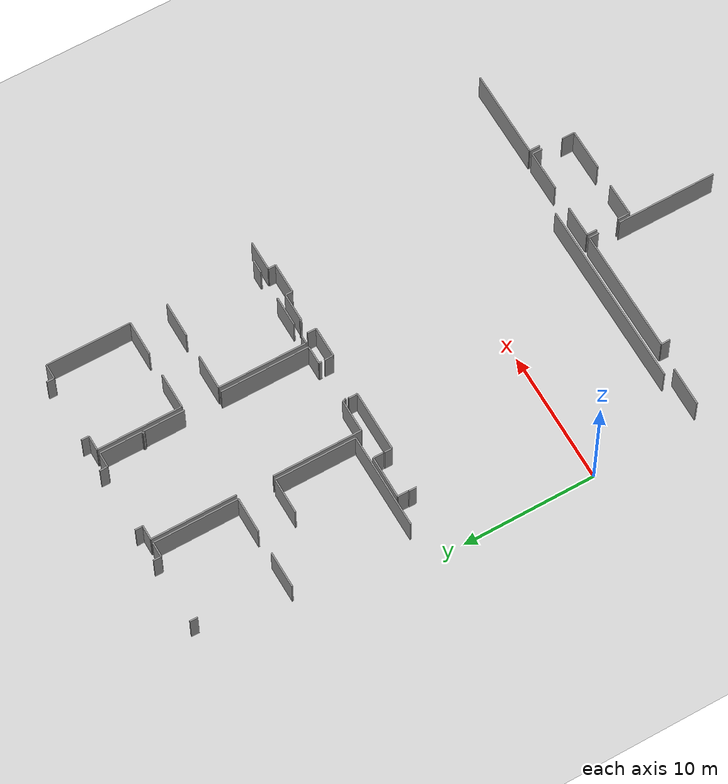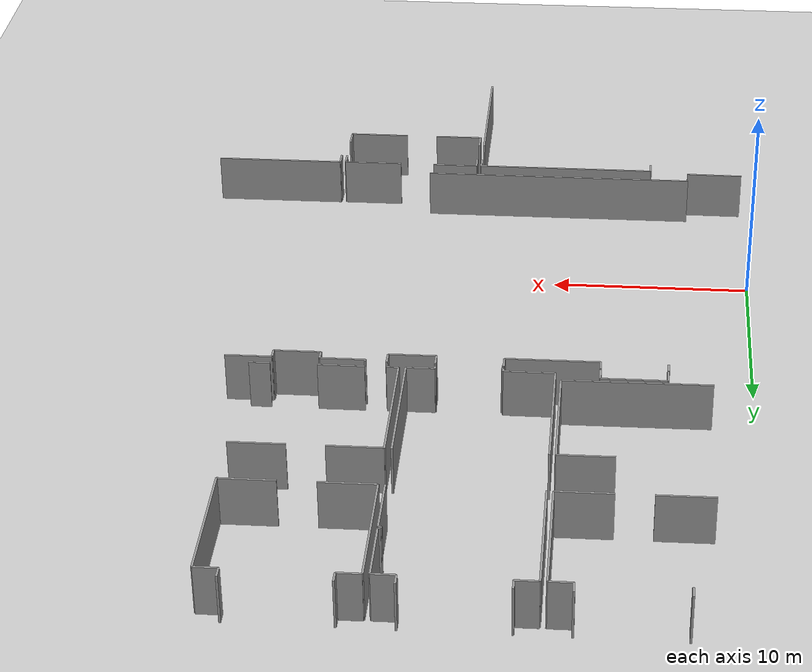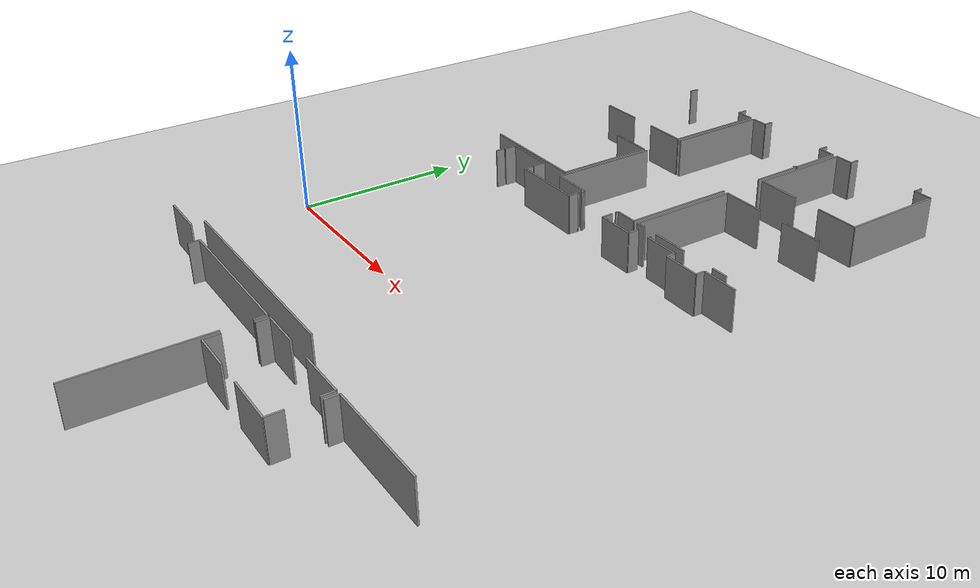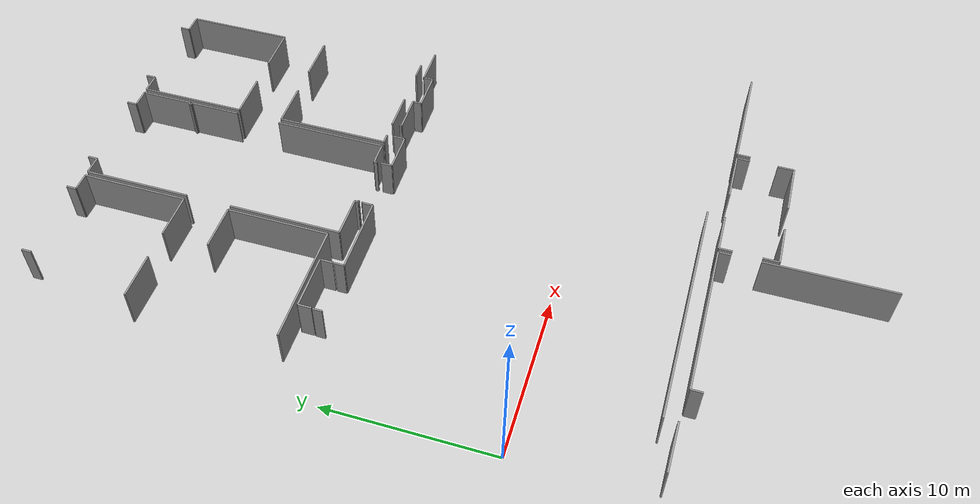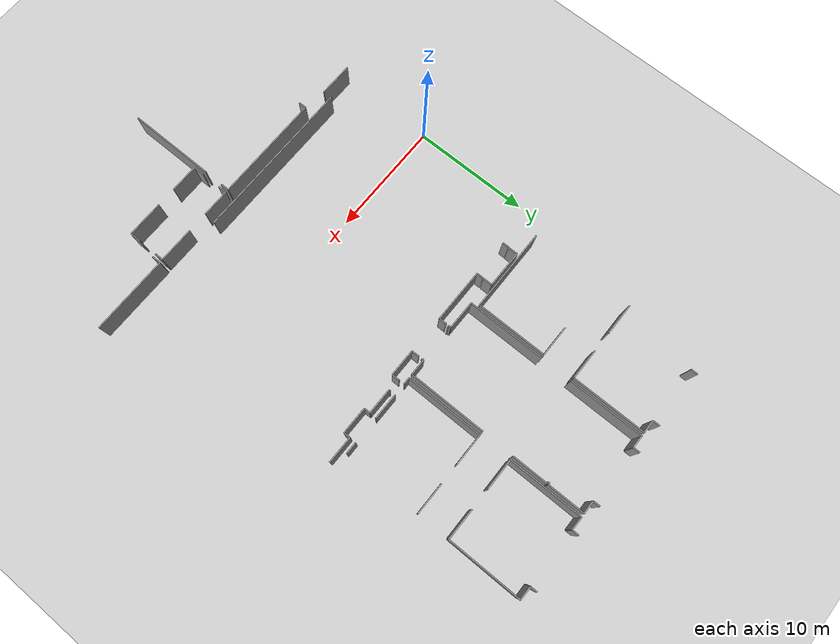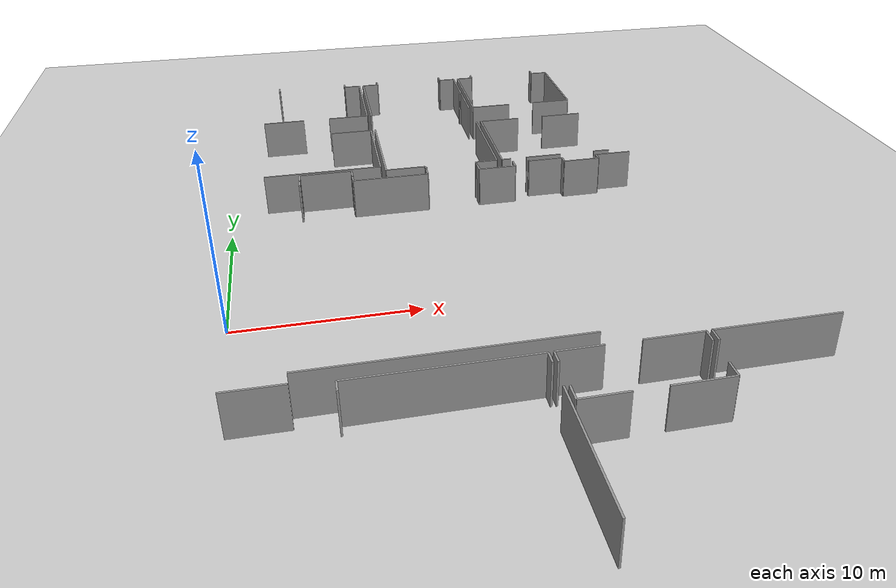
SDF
<sdf version="1.6">
 <world name="default">
  <model name="ground_plane">
   <static>1</static>
   <link name="link">
    <collision name="collision">
     <geometry><plane><normal>0 0 1</normal><size>100 100</size></plane></geometry>
     <surface><friction><ode><mu>100</mu><mu2>50</mu2></ode></friction></surface>
    </collision>
    <visual name="visual">
     <cast_shadows>0</cast_shadows>
     <geometry><plane><normal>0 0 1</normal><size>100 100</size></plane></geometry>
     <material>
      <script><uri>file://media/materials/scripts/gazebo.material</uri><name>Gazebo/Grey</name></script>
     </material>
    </visual>
   </link>
  </model>
  <model name="50045228">
   <static>1</static>
   <link name="Wall_53">
    <collision name="Wall_53_Collision">
     <geometry><box><size>0.587485331896 0.1 2.5</size></box></geometry>
     <pose>0.293742665948 0 1.25 0 0 0</pose>
    </collision>
    <visual name="Wall_53_Visual">
     <pose>0.293742665948 0 1.25 0 0 0</pose>
     <geometry><box><size>0.587485331896 0.1 2.5</size></box></geometry>
     <material>
      <script><uri>file://media/materials/scripts/gazebo.material</uri><name>Gazebo/Grey</name></script>
      <ambient>1 1 1 1</ambient>
     </material>
    </visual>
    <pose>50.1288256002 -0.587485331896 0 0 0 1.57079632679</pose>
   </link>
   <link name="Wall_54">
    <collision name="Wall_54_Collision">
     <geometry><box><size>0.590276236085 0.1 2.5</size></box></geometry>
     <pose>0.295138118043 0 1.25 0 0 0</pose>
    </collision>
    <visual name="Wall_54_Visual">
     <pose>0.295138118043 0 1.25 0 0 0</pose>
     <geometry><box><size>0.590276236085 0.1 2.5</size></box></geometry>
     <material>
      <script><uri>file://media/materials/scripts/gazebo.material</uri><name>Gazebo/Grey</name></script>
      <ambient>1 1 1 1</ambient>
     </material>
    </visual>
    <pose>55.0569281025 -0.0 0 0 0 -1.57079632679</pose>
   </link>
   <link name="Wall_55">
    <collision name="Wall_55_Collision">
     <geometry><box><size>1.11065300815 0.1 2.5</size></box></geometry>
     <pose>0.555326504075 0 1.25 0 0 0</pose>
    </collision>
    <visual name="Wall_55_Visual">
     <pose>0.555326504075 0 1.25 0 0 0</pose>
     <geometry><box><size>1.11065300815 0.1 2.5</size></box></geometry>
     <material>
      <script><uri>file://media/materials/scripts/gazebo.material</uri><name>Gazebo/Grey</name></script>
      <ambient>1 1 1 1</ambient>
     </material>
    </visual>
    <pose>55.0569281025 -0.590276236085 0 0 0 0.0</pose>
   </link>
   <link name="Wall_56">
    <collision name="Wall_56_Collision">
     <geometry><box><size>6.32545748628 0.1 2.5</size></box></geometry>
     <pose>3.16272874314 0 1.25 0 0 0</pose>
    </collision>
    <visual name="Wall_56_Visual">
     <pose>3.16272874314 0 1.25 0 0 0</pose>
     <geometry><box><size>6.32545748628 0.1 2.5</size></box></geometry>
     <material>
      <script><uri>file://media/materials/scripts/gazebo.material</uri><name>Gazebo/Grey</name></script>
      <ambient>1 1 1 1</ambient>
     </material>
    </visual>
    <pose>56.1675811107 -0.590276236085 0 0 0 -1.57079632679</pose>
   </link>
   <link name="Wall_57">
    <collision name="Wall_57_Collision">
     <geometry><box><size>2.69905806984 0.1 2.5</size></box></geometry>
     <pose>1.34952903492 0 1.25 0 0 0</pose>
    </collision>
    <visual name="Wall_57_Visual">
     <pose>1.34952903492 0 1.25 0 0 0</pose>
     <geometry><box><size>2.69905806984 0.1 2.5</size></box></geometry>
     <material>
      <script><uri>file://media/materials/scripts/gazebo.material</uri><name>Gazebo/Grey</name></script>
      <ambient>1 1 1 1</ambient>
     </material>
    </visual>
    <pose>56.1675811107 -6.91573372237 0 0 0 3.14159265359</pose>
   </link>
   <link name="Wall_58">
    <collision name="Wall_58_Collision">
     <geometry><box><size>2.72343741523 0.1 2.5</size></box></geometry>
     <pose>1.36171870762 0 1.25 0 0 0</pose>
    </collision>
    <visual name="Wall_58_Visual">
     <pose>1.36171870762 0 1.25 0 0 0</pose>
     <geometry><box><size>2.72343741523 0.1 2.5</size></box></geometry>
     <material>
      <script><uri>file://media/materials/scripts/gazebo.material</uri><name>Gazebo/Grey</name></script>
      <ambient>1 1 1 1</ambient>
     </material>
    </visual>
    <pose>51.7134248834 -6.91573372237 0 0 0 -3.13754013245</pose>
   </link>
   <link name="Wall_59">
    <collision name="Wall_59_Collision">
     <geometry><box><size>6.36935079763 0.1 2.5</size></box></geometry>
     <pose>3.18467539881 0 1.25 0 0 0</pose>
    </collision>
    <visual name="Wall_59_Visual">
     <pose>3.18467539881 0 1.25 0 0 0</pose>
     <geometry><box><size>6.36935079763 0.1 2.5</size></box></geometry>
     <material>
      <script><uri>file://media/materials/scripts/gazebo.material</uri><name>Gazebo/Grey</name></script>
      <ambient>1 1 1 1</ambient>
     </material>
    </visual>
    <pose>56.4650661254 -6.95315721036 0 0 0 1.57079632679</pose>
   </link>
   <link name="Wall_60">
    <collision name="Wall_60_Collision">
     <geometry><box><size>1.09390758301 0.1 2.5</size></box></geometry>
     <pose>0.546953791507 0 1.25 0 0 0</pose>
    </collision>
    <visual name="Wall_60_Visual">
     <pose>0.546953791507 0 1.25 0 0 0</pose>
     <geometry><box><size>1.09390758301 0.1 2.5</size></box></geometry>
     <material>
      <script><uri>file://media/materials/scripts/gazebo.material</uri><name>Gazebo/Grey</name></script>
      <ambient>1 1 1 1</ambient>
     </material>
    </visual>
    <pose>56.4650661254 -0.583806412737 0 0 0 0.0</pose>
   </link>
   <link name="Wall_61">
    <collision name="Wall_61_Collision">
     <geometry><box><size>0.575560559449 0.1 2.5</size></box></geometry>
     <pose>0.287780279725 0 1.25 0 0 0</pose>
    </collision>
    <visual name="Wall_61_Visual">
     <pose>0.287780279725 0 1.25 0 0 0</pose>
     <geometry><box><size>0.575560559449 0.1 2.5</size></box></geometry>
     <material>
      <script><uri>file://media/materials/scripts/gazebo.material</uri><name>Gazebo/Grey</name></script>
      <ambient>1 1 1 1</ambient>
     </material>
    </visual>
    <pose>57.5589737084 -0.583806412737 0 0 0 1.57079632679</pose>
   </link>
   <link name="Wall_62">
    <collision name="Wall_62_Collision">
     <geometry><box><size>0.601059274999 0.1 2.5</size></box></geometry>
     <pose>0.3005296375 0 1.25 0 0 0</pose>
    </collision>
    <visual name="Wall_62_Visual">
     <pose>0.3005296375 0 1.25 0 0 0</pose>
     <geometry><box><size>0.601059274999 0.1 2.5</size></box></geometry>
     <material>
      <script><uri>file://media/materials/scripts/gazebo.material</uri><name>Gazebo/Grey</name></script>
      <ambient>1 1 1 1</ambient>
     </material>
    </visual>
    <pose>62.4563762646 -0.00824585328724 0 0 0 -1.57079632679</pose>
   </link>
   <link name="Wall_63">
    <collision name="Wall_63_Collision">
     <geometry><box><size>1.11141416384 0.1 2.5</size></box></geometry>
     <pose>0.555707081919 0 1.25 0 0 0</pose>
    </collision>
    <visual name="Wall_63_Visual">
     <pose>0.555707081919 0 1.25 0 0 0</pose>
     <geometry><box><size>1.11141416384 0.1 2.5</size></box></geometry>
     <material>
      <script><uri>file://media/materials/scripts/gazebo.material</uri><name>Gazebo/Grey</name></script>
      <ambient>1 1 1 1</ambient>
     </material>
    </visual>
    <pose>62.4563762646 -0.609305128286 0 0 0 0.0</pose>
   </link>
   <link name="Wall_64">
    <collision name="Wall_64_Collision">
     <geometry><box><size>3.15258000063 0.1 2.5</size></box></geometry>
     <pose>1.57629000032 0 1.25 0 0 0</pose>
    </collision>
    <visual name="Wall_64_Visual">
     <pose>1.57629000032 0 1.25 0 0 0</pose>
     <geometry><box><size>3.15258000063 0.1 2.5</size></box></geometry>
     <material>
      <script><uri>file://media/materials/scripts/gazebo.material</uri><name>Gazebo/Grey</name></script>
      <ambient>1 1 1 1</ambient>
     </material>
    </visual>
    <pose>63.5677904285 -0.609305128286 0 0 0 -1.57079632679</pose>
   </link>
   <link name="Wall_65">
    <collision name="Wall_65_Collision">
     <geometry><box><size>0.135612571755 0.1 2.5</size></box></geometry>
     <pose>0.0678062858774 0 1.25 0 0 0</pose>
    </collision>
    <visual name="Wall_65_Visual">
     <pose>0.0678062858774 0 1.25 0 0 0</pose>
     <geometry><box><size>0.135612571755 0.1 2.5</size></box></geometry>
     <material>
      <script><uri>file://media/materials/scripts/gazebo.material</uri><name>Gazebo/Grey</name></script>
      <ambient>1 1 1 1</ambient>
     </material>
    </visual>
    <pose>63.5677904285 -3.76188512892 0 0 0 3.14159265359</pose>
   </link>
   <link name="Wall_66">
    <collision name="Wall_66_Collision">
     <geometry><box><size>0.119755161587 0.1 2.5</size></box></geometry>
     <pose>0.0598775807935 0 1.25 0 0 0</pose>
    </collision>
    <visual name="Wall_66_Visual">
     <pose>0.0598775807935 0 1.25 0 0 0</pose>
     <geometry><box><size>0.119755161587 0.1 2.5</size></box></geometry>
     <material>
      <script><uri>file://media/materials/scripts/gazebo.material</uri><name>Gazebo/Grey</name></script>
      <ambient>1 1 1 1</ambient>
     </material>
    </visual>
    <pose>63.4321778567 -3.76188512892 0 0 0 -1.57079632679</pose>
   </link>
   <link name="Wall_67">
    <collision name="Wall_67_Collision">
     <geometry><box><size>0.132441089721 0.1 2.5</size></box></geometry>
     <pose>0.0662205448606 0 1.25 0 0 0</pose>
    </collision>
    <visual name="Wall_67_Visual">
     <pose>0.0662205448606 0 1.25 0 0 0</pose>
     <geometry><box><size>0.132441089721 0.1 2.5</size></box></geometry>
     <material>
      <script><uri>file://media/materials/scripts/gazebo.material</uri><name>Gazebo/Grey</name></script>
      <ambient>1 1 1 1</ambient>
     </material>
    </visual>
    <pose>63.4321778567 -3.88164029051 0 0 0 0.0</pose>
   </link>
   <link name="Wall_68">
    <collision name="Wall_68_Collision">
     <geometry><box><size>3.05883099172 0.1 2.5</size></box></geometry>
     <pose>1.52941549586 0 1.25 0 0 0</pose>
    </collision>
    <visual name="Wall_68_Visual">
     <pose>1.52941549586 0 1.25 0 0 0</pose>
     <geometry><box><size>3.05883099172 0.1 2.5</size></box></geometry>
     <material>
      <script><uri>file://media/materials/scripts/gazebo.material</uri><name>Gazebo/Grey</name></script>
      <ambient>1 1 1 1</ambient>
     </material>
    </visual>
    <pose>63.5646189464 -3.88164029051 0 0 0 -1.57079632679</pose>
   </link>
   <link name="Wall_69">
    <collision name="Wall_69_Collision">
     <geometry><box><size>6.33433763598 0.1 2.5</size></box></geometry>
     <pose>3.16716881799 0 1.25 0 0 0</pose>
    </collision>
    <visual name="Wall_69_Visual">
     <pose>3.16716881799 0 1.25 0 0 0</pose>
     <geometry><box><size>6.33433763598 0.1 2.5</size></box></geometry>
     <material>
      <script><uri>file://media/materials/scripts/gazebo.material</uri><name>Gazebo/Grey</name></script>
      <ambient>1 1 1 1</ambient>
     </material>
    </visual>
    <pose>63.8765659193 -6.92182296787 0 0 0 1.57079632679</pose>
   </link>
   <link name="Wall_70">
    <collision name="Wall_70_Collision">
     <geometry><box><size>1.14312898417 0.1 2.5</size></box></geometry>
     <pose>0.571564492087 0 1.25 0 0 0</pose>
    </collision>
    <visual name="Wall_70_Visual">
     <pose>0.571564492087 0 1.25 0 0 0</pose>
     <geometry><box><size>1.14312898417 0.1 2.5</size></box></geometry>
     <material>
      <script><uri>file://media/materials/scripts/gazebo.material</uri><name>Gazebo/Grey</name></script>
      <ambient>1 1 1 1</ambient>
     </material>
    </visual>
    <pose>63.8765659193 -0.587485331896 0 0 0 0.0</pose>
   </link>
   <link name="Wall_71">
    <collision name="Wall_71_Collision">
     <geometry><box><size>0.573023373823 0.1 2.5</size></box></geometry>
     <pose>0.286511686911 0 1.25 0 0 0</pose>
    </collision>
    <visual name="Wall_71_Visual">
     <pose>0.286511686911 0 1.25 0 0 0</pose>
     <geometry><box><size>0.573023373823 0.1 2.5</size></box></geometry>
     <material>
      <script><uri>file://media/materials/scripts/gazebo.material</uri><name>Gazebo/Grey</name></script>
      <ambient>1 1 1 1</ambient>
     </material>
    </visual>
    <pose>65.0196949034 -0.587485331896 0 0 0 1.57079632679</pose>
   </link>
   <link name="Wall_72">
    <collision name="Wall_72_Collision">
     <geometry><box><size>0.573023373823 0.1 2.5</size></box></geometry>
     <pose>0.286511686911 0 1.25 0 0 0</pose>
    </collision>
    <visual name="Wall_72_Visual">
     <pose>0.286511686911 0 1.25 0 0 0</pose>
     <geometry><box><size>0.573023373823 0.1 2.5</size></box></geometry>
     <material>
      <script><uri>file://media/materials/scripts/gazebo.material</uri><name>Gazebo/Grey</name></script>
      <ambient>1 1 1 1</ambient>
     </material>
    </visual>
    <pose>69.9155751483 -0.014461958073 0 0 0 -1.57079632679</pose>
   </link>
   <link name="Wall_73">
    <collision name="Wall_73_Collision">
     <geometry><box><size>1.13145793029 0.1 2.5</size></box></geometry>
     <pose>0.565728965145 0 1.25 0 0 0</pose>
    </collision>
    <visual name="Wall_73_Visual">
     <pose>0.565728965145 0 1.25 0 0 0</pose>
     <geometry><box><size>1.13145793029 0.1 2.5</size></box></geometry>
     <material>
      <script><uri>file://media/materials/scripts/gazebo.material</uri><name>Gazebo/Grey</name></script>
      <ambient>1 1 1 1</ambient>
     </material>
    </visual>
    <pose>69.9155751483 -0.587485331896 0 0 0 0.0</pose>
   </link>
   <link name="Wall_74">
    <collision name="Wall_74_Collision">
     <geometry><box><size>6.3273603755 0.1 2.5</size></box></geometry>
     <pose>3.16368018775 0 1.25 0 0 0</pose>
    </collision>
    <visual name="Wall_74_Visual">
     <pose>3.16368018775 0 1.25 0 0 0</pose>
     <geometry><box><size>6.3273603755 0.1 2.5</size></box></geometry>
     <material>
      <script><uri>file://media/materials/scripts/gazebo.material</uri><name>Gazebo/Grey</name></script>
      <ambient>1 1 1 1</ambient>
     </material>
    </visual>
    <pose>71.0470330786 -0.587485331896 0 0 0 -1.57079632679</pose>
   </link>
   <link name="Wall_75">
    <collision name="Wall_75_Collision">
     <geometry><box><size>2.66911927944 0.1 2.5</size></box></geometry>
     <pose>1.33455963972 0 1.25 0 0 0</pose>
    </collision>
    <visual name="Wall_75_Visual">
     <pose>1.33455963972 0 1.25 0 0 0</pose>
     <geometry><box><size>2.66911927944 0.1 2.5</size></box></geometry>
     <material>
      <script><uri>file://media/materials/scripts/gazebo.material</uri><name>Gazebo/Grey</name></script>
      <ambient>1 1 1 1</ambient>
     </material>
    </visual>
    <pose>71.0470330786 -6.9148457074 0 0 0 3.14159265359</pose>
   </link>
   <link name="Wall_76">
    <collision name="Wall_76_Collision">
     <geometry><box><size>2.70756663172 0.1 2.5</size></box></geometry>
     <pose>1.35378331586 0 1.25 0 0 0</pose>
    </collision>
    <visual name="Wall_76_Visual">
     <pose>1.35378331586 0 1.25 0 0 0</pose>
     <geometry><box><size>2.70756663172 0.1 2.5</size></box></geometry>
     <material>
      <script><uri>file://media/materials/scripts/gazebo.material</uri><name>Gazebo/Grey</name></script>
      <ambient>1 1 1 1</ambient>
     </material>
    </visual>
    <pose>66.5841235609 -6.9148457074 0 0 0 -3.13901570198</pose>
   </link>
   <link name="Wall_108">
    <collision name="Wall_108_Collision">
     <geometry><box><size>6.65224699502 0.1 2.5</size></box></geometry>
     <pose>3.32612349751 0 1.25 0 0 0</pose>
    </collision>
    <visual name="Wall_108_Visual">
     <pose>3.32612349751 0 1.25 0 0 0</pose>
     <geometry><box><size>6.65224699502 0.1 2.5</size></box></geometry>
     <material>
      <script><uri>file://media/materials/scripts/gazebo.material</uri><name>Gazebo/Grey</name></script>
      <ambient>1 1 1 1</ambient>
     </material>
    </visual>
    <pose>63.8900130031 -16.3569820177 0 0 0 1.57079632679</pose>
   </link>
   <link name="Wall_109">
    <collision name="Wall_109_Collision">
     <geometry><box><size>2.67457422854 0.1 2.5</size></box></geometry>
     <pose>1.33728711427 0 1.25 0 0 0</pose>
    </collision>
    <visual name="Wall_109_Visual">
     <pose>1.33728711427 0 1.25 0 0 0</pose>
     <geometry><box><size>2.67457422854 0.1 2.5</size></box></geometry>
     <material>
      <script><uri>file://media/materials/scripts/gazebo.material</uri><name>Gazebo/Grey</name></script>
      <ambient>1 1 1 1</ambient>
     </material>
    </visual>
    <pose>63.8900130031 -9.70473502268 0 0 0 0.0</pose>
   </link>
   <link name="Wall_110">
    <collision name="Wall_110_Collision">
     <geometry><box><size>2.69943864768 0.1 2.5</size></box></geometry>
     <pose>1.34971932384 0 1.25 0 0 0</pose>
    </collision>
    <visual name="Wall_110_Visual">
     <pose>1.34971932384 0 1.25 0 0 0</pose>
     <geometry><box><size>2.69943864768 0.1 2.5</size></box></geometry>
     <material>
      <script><uri>file://media/materials/scripts/gazebo.material</uri><name>Gazebo/Grey</name></script>
      <ambient>1 1 1 1</ambient>
     </material>
    </visual>
    <pose>68.3517807872 -9.70473502268 0 0 0 0.0</pose>
   </link>
   <link name="Wall_112">
    <collision name="Wall_112_Collision">
     <geometry><box><size>1.02210522977 0.1 2.5</size></box></geometry>
     <pose>0.511052614887 0 1.25 0 0 0</pose>
    </collision>
    <visual name="Wall_112_Visual">
     <pose>0.511052614887 0 1.25 0 0 0</pose>
     <geometry><box><size>1.02210522977 0.1 2.5</size></box></geometry>
     <material>
      <script><uri>file://media/materials/scripts/gazebo.material</uri><name>Gazebo/Grey</name></script>
      <ambient>1 1 1 1</ambient>
     </material>
    </visual>
    <pose>71.0512194348 -16.3403634518 0 0 0 3.14159265359</pose>
   </link>
   <link name="Wall_113">
    <collision name="Wall_113_Collision">
     <geometry><box><size>2.26875138752 0.1 2.5</size></box></geometry>
     <pose>1.13437569376 0 1.25 0 0 0</pose>
    </collision>
    <visual name="Wall_113_Visual">
     <pose>1.13437569376 0 1.25 0 0 0</pose>
     <geometry><box><size>2.26875138752 0.1 2.5</size></box></geometry>
     <material>
      <script><uri>file://media/materials/scripts/gazebo.material</uri><name>Gazebo/Grey</name></script>
      <ambient>1 1 1 1</ambient>
     </material>
    </visual>
    <pose>67.7686086708 -16.3403634518 0 0 0 3.14159265359</pose>
   </link>
   <link name="Wall_114">
    <collision name="Wall_114_Collision">
     <geometry><box><size>0.584042895928 0.1 2.5</size></box></geometry>
     <pose>0.292021447964 0 1.25 0 0 0</pose>
    </collision>
    <visual name="Wall_114_Visual">
     <pose>0.292021447964 0 1.25 0 0 0</pose>
     <geometry><box><size>0.584042895928 0.1 2.5</size></box></geometry>
     <material>
      <script><uri>file://media/materials/scripts/gazebo.material</uri><name>Gazebo/Grey</name></script>
      <ambient>1 1 1 1</ambient>
     </material>
    </visual>
    <pose>64.4738194158 -16.3403634518 0 0 0 -3.11313445415</pose>
   </link>
   <link name="Wall_115">
    <collision name="Wall_115_Collision">
     <geometry><box><size>6.66594779741 0.1 2.5</size></box></geometry>
     <pose>3.3329738987 0 1.25 0 0 0</pose>
    </collision>
    <visual name="Wall_115_Visual">
     <pose>3.3329738987 0 1.25 0 0 0</pose>
     <geometry><box><size>6.66594779741 0.1 2.5</size></box></geometry>
     <material>
      <script><uri>file://media/materials/scripts/gazebo.material</uri><name>Gazebo/Grey</name></script>
      <ambient>1 1 1 1</ambient>
     </material>
    </visual>
    <pose>56.4521264787 -16.3416320447 0 0 0 1.57079632679</pose>
   </link>
   <link name="Wall_116">
    <collision name="Wall_116_Collision">
     <geometry><box><size>6.68510354889 0.1 2.5</size></box></geometry>
     <pose>3.34255177444 0 1.25 0 0 0</pose>
    </collision>
    <visual name="Wall_116_Visual">
     <pose>3.34255177444 0 1.25 0 0 0</pose>
     <geometry><box><size>6.68510354889 0.1 2.5</size></box></geometry>
     <material>
      <script><uri>file://media/materials/scripts/gazebo.material</uri><name>Gazebo/Grey</name></script>
      <ambient>1 1 1 1</ambient>
     </material>
    </visual>
    <pose>63.549522692 -9.67568424725 0 0 0 -1.57079632679</pose>
   </link>
   <link name="Wall_117">
    <collision name="Wall_117_Collision">
     <geometry><box><size>1.38999714567 0.1 2.5</size></box></geometry>
     <pose>0.694998572833 0 1.25 0 0 0</pose>
    </collision>
    <visual name="Wall_117_Visual">
     <pose>0.694998572833 0 1.25 0 0 0</pose>
     <geometry><box><size>1.38999714567 0.1 2.5</size></box></geometry>
     <material>
      <script><uri>file://media/materials/scripts/gazebo.material</uri><name>Gazebo/Grey</name></script>
      <ambient>1 1 1 1</ambient>
     </material>
    </visual>
    <pose>63.549522692 -16.3607877961 0 0 0 3.14159265359</pose>
   </link>
   <link name="Wall_118">
    <collision name="Wall_118_Collision">
     <geometry><box><size>0.191811233389 0.1 2.5</size></box></geometry>
     <pose>0.0959056166947 0 1.25 0 0 0</pose>
    </collision>
    <visual name="Wall_118_Visual">
     <pose>0.0959056166947 0 1.25 0 0 0</pose>
     <geometry><box><size>0.191811233389 0.1 2.5</size></box></geometry>
     <material>
      <script><uri>file://media/materials/scripts/gazebo.material</uri><name>Gazebo/Grey</name></script>
      <ambient>1 1 1 1</ambient>
     </material>
    </visual>
    <pose>62.1595255463 -16.3607877961 0 0 0 -1.57079632679</pose>
   </link>
   <link name="Wall_119">
    <collision name="Wall_119_Collision">
     <geometry><box><size>0.0986965208842 0.1 2.5</size></box></geometry>
     <pose>0.0493482604421 0 1.25 0 0 0</pose>
    </collision>
    <visual name="Wall_119_Visual">
     <pose>0.0493482604421 0 1.25 0 0 0</pose>
     <geometry><box><size>0.0986965208842 0.1 2.5</size></box></geometry>
     <material>
      <script><uri>file://media/materials/scripts/gazebo.material</uri><name>Gazebo/Grey</name></script>
      <ambient>1 1 1 1</ambient>
     </material>
    </visual>
    <pose>59.0187434588 -16.5525990295 0 0 0 3.14159265359</pose>
   </link>
   <link name="Wall_120">
    <collision name="Wall_120_Collision">
     <geometry><box><size>0.203609146554 0.1 2.5</size></box></geometry>
     <pose>0.101804573277 0 1.25 0 0 0</pose>
    </collision>
    <visual name="Wall_120_Visual">
     <pose>0.101804573277 0 1.25 0 0 0</pose>
     <geometry><box><size>0.203609146554 0.1 2.5</size></box></geometry>
     <material>
      <script><uri>file://media/materials/scripts/gazebo.material</uri><name>Gazebo/Grey</name></script>
      <ambient>1 1 1 1</ambient>
     </material>
    </visual>
    <pose>58.9200469379 -16.5525990295 0 0 0 1.57079632679</pose>
   </link>
   <link name="Wall_121">
    <collision name="Wall_121_Collision">
     <geometry><box><size>2.46793142751 0.1 2.5</size></box></geometry>
     <pose>1.23396571375 0 1.25 0 0 0</pose>
    </collision>
    <visual name="Wall_121_Visual">
     <pose>1.23396571375 0 1.25 0 0 0</pose>
     <geometry><box><size>2.46793142751 0.1 2.5</size></box></geometry>
     <material>
      <script><uri>file://media/materials/scripts/gazebo.material</uri><name>Gazebo/Grey</name></script>
      <ambient>1 1 1 1</ambient>
     </material>
    </visual>
    <pose>58.9200469379 -16.348989883 0 0 0 3.13861127042</pose>
   </link>
   <link name="Wall_124">
    <collision name="Wall_124_Collision">
     <geometry><box><size>2.69423741715 0.1 2.5</size></box></geometry>
     <pose>1.34711870857 0 1.25 0 0 0</pose>
    </collision>
    <visual name="Wall_124_Visual">
     <pose>1.34711870857 0 1.25 0 0 0</pose>
     <geometry><box><size>2.69423741715 0.1 2.5</size></box></geometry>
     <material>
      <script><uri>file://media/materials/scripts/gazebo.material</uri><name>Gazebo/Grey</name></script>
      <ambient>1 1 1 1</ambient>
     </material>
    </visual>
    <pose>53.4718213821 -9.68431067838 0 0 0 0.0</pose>
   </link>
   <link name="Wall_125">
    <collision name="Wall_125_Collision">
     <geometry><box><size>6.07211950144 0.1 2.5</size></box></geometry>
     <pose>3.03605975072 0 1.25 0 0 0</pose>
    </collision>
    <visual name="Wall_125_Visual">
     <pose>3.03605975072 0 1.25 0 0 0</pose>
     <geometry><box><size>6.07211950144 0.1 2.5</size></box></geometry>
     <material>
      <script><uri>file://media/materials/scripts/gazebo.material</uri><name>Gazebo/Grey</name></script>
      <ambient>1 1 1 1</ambient>
     </material>
    </visual>
    <pose>56.1660587993 -9.68431067838 0 0 0 -1.57079632679</pose>
   </link>
   <link name="Wall_126">
    <collision name="Wall_126_Collision">
     <geometry><box><size>7.18573779335 0.1 2.5</size></box></geometry>
     <pose>3.59286889667 0 1.25 0 0 0</pose>
    </collision>
    <visual name="Wall_126_Visual">
     <pose>3.59286889667 0 1.25 0 0 0</pose>
     <geometry><box><size>7.18573779335 0.1 2.5</size></box></geometry>
     <material>
      <script><uri>file://media/materials/scripts/gazebo.material</uri><name>Gazebo/Grey</name></script>
      <ambient>1 1 1 1</ambient>
     </material>
    </visual>
    <pose>56.1660587993 -15.7564301798 0 0 0 -3.1379558566</pose>
   </link>
   <link name="Wall_169">
    <collision name="Wall_169_Collision">
     <geometry><box><size>0.562620912753 0.1 2.5</size></box></geometry>
     <pose>0.281310456376 0 1.25 0 0 0</pose>
    </collision>
    <visual name="Wall_169_Visual">
     <pose>0.281310456376 0 1.25 0 0 0</pose>
     <geometry><box><size>0.562620912753 0.1 2.5</size></box></geometry>
     <material>
      <script><uri>file://media/materials/scripts/gazebo.material</uri><name>Gazebo/Grey</name></script>
      <ambient>1 1 1 1</ambient>
     </material>
    </visual>
    <pose>51.0928292791 -17.4284355079 0 0 0 1.57079632679</pose>
   </link>
   <link name="Wall_170">
    <collision name="Wall_170_Collision">
     <geometry><box><size>0.574545685199 0.1 2.5</size></box></geometry>
     <pose>0.287272842599 0 1.25 0 0 0</pose>
    </collision>
    <visual name="Wall_170_Visual">
     <pose>0.287272842599 0 1.25 0 0 0</pose>
     <geometry><box><size>0.574545685199 0.1 2.5</size></box></geometry>
     <material>
      <script><uri>file://media/materials/scripts/gazebo.material</uri><name>Gazebo/Grey</name></script>
      <ambient>1 1 1 1</ambient>
     </material>
    </visual>
    <pose>54.3186070851 -16.8658145952 0 0 0 -1.57079632679</pose>
   </link>
   <link name="Wall_171">
    <collision name="Wall_171_Collision">
     <geometry><box><size>4.59877580794 0.1 2.5</size></box></geometry>
     <pose>2.29938790397 0 1.25 0 0 0</pose>
    </collision>
    <visual name="Wall_171_Visual">
     <pose>2.29938790397 0 1.25 0 0 0</pose>
     <geometry><box><size>4.59877580794 0.1 2.5</size></box></geometry>
     <material>
      <script><uri>file://media/materials/scripts/gazebo.material</uri><name>Gazebo/Grey</name></script>
      <ambient>1 1 1 1</ambient>
     </material>
    </visual>
    <pose>54.3186070851 -17.4403602804 0 0 0 0.0</pose>
   </link>
   <link name="Wall_172">
    <collision name="Wall_172_Collision">
     <geometry><box><size>0.641273667185 0.1 2.5</size></box></geometry>
     <pose>0.320636833592 0 1.25 0 0 0</pose>
    </collision>
    <visual name="Wall_172_Visual">
     <pose>0.320636833592 0 1.25 0 0 0</pose>
     <geometry><box><size>0.641273667185 0.1 2.5</size></box></geometry>
     <material>
      <script><uri>file://media/materials/scripts/gazebo.material</uri><name>Gazebo/Grey</name></script>
      <ambient>1 1 1 1</ambient>
     </material>
    </visual>
    <pose>58.917382893 -17.4403602804 0 0 0 1.57079632679</pose>
   </link>
   <link name="Wall_173">
    <collision name="Wall_173_Collision">
     <geometry><box><size>0.0679965747994 0.1 2.5</size></box></geometry>
     <pose>0.0339982873997 0 1.25 0 0 0</pose>
    </collision>
    <visual name="Wall_173_Visual">
     <pose>0.0339982873997 0 1.25 0 0 0</pose>
     <geometry><box><size>0.0679965747994 0.1 2.5</size></box></geometry>
     <material>
      <script><uri>file://media/materials/scripts/gazebo.material</uri><name>Gazebo/Grey</name></script>
      <ambient>1 1 1 1</ambient>
     </material>
    </visual>
    <pose>58.917382893 -16.7990866132 0 0 0 0.0</pose>
   </link>
   <link name="Wall_174">
    <collision name="Wall_174_Collision">
     <geometry><box><size>0.662459167169 0.1 2.5</size></box></geometry>
     <pose>0.331229583584 0 1.25 0 0 0</pose>
    </collision>
    <visual name="Wall_174_Visual">
     <pose>0.331229583584 0 1.25 0 0 0</pose>
     <geometry><box><size>0.662459167169 0.1 2.5</size></box></geometry>
     <material>
      <script><uri>file://media/materials/scripts/gazebo.material</uri><name>Gazebo/Grey</name></script>
      <ambient>1 1 1 1</ambient>
     </material>
    </visual>
    <pose>62.1791887349 -16.7990866132 0 0 0 -1.57079632679</pose>
   </link>
   <link name="Wall_175">
    <collision name="Wall_175_Collision">
     <geometry><box><size>2.31657733659 0.1 2.5</size></box></geometry>
     <pose>1.15828866829 0 1.25 0 0 0</pose>
    </collision>
    <visual name="Wall_175_Visual">
     <pose>1.15828866829 0 1.25 0 0 0</pose>
     <geometry><box><size>2.31657733659 0.1 2.5</size></box></geometry>
     <material>
      <script><uri>file://media/materials/scripts/gazebo.material</uri><name>Gazebo/Grey</name></script>
      <ambient>1 1 1 1</ambient>
     </material>
    </visual>
    <pose>62.1791887349 -17.4615457803 0 0 0 0.0</pose>
   </link>
   <link name="Wall_176">
    <collision name="Wall_176_Collision">
     <geometry><box><size>0.67298848752 0.1 2.5</size></box></geometry>
     <pose>0.33649424376 0 1.25 0 0 0</pose>
    </collision>
    <visual name="Wall_176_Visual">
     <pose>0.33649424376 0 1.25 0 0 0</pose>
     <geometry><box><size>0.67298848752 0.1 2.5</size></box></geometry>
     <material>
      <script><uri>file://media/materials/scripts/gazebo.material</uri><name>Gazebo/Grey</name></script>
      <ambient>1 1 1 1</ambient>
     </material>
    </visual>
    <pose>64.4957660715 -17.4615457803 0 0 0 1.57079632679</pose>
   </link>
   <link name="Wall_177">
    <collision name="Wall_177_Collision">
     <geometry><box><size>0.132441089721 0.1 2.5</size></box></geometry>
     <pose>0.0662205448606 0 1.25 0 0 0</pose>
    </collision>
    <visual name="Wall_177_Visual">
     <pose>0.0662205448606 0 1.25 0 0 0</pose>
     <geometry><box><size>0.132441089721 0.1 2.5</size></box></geometry>
     <material>
      <script><uri>file://media/materials/scripts/gazebo.material</uri><name>Gazebo/Grey</name></script>
      <ambient>1 1 1 1</ambient>
     </material>
    </visual>
    <pose>65.5327138372 -16.7885572928 0 0 0 -1.57079632679</pose>
   </link>
   <link name="Wall_178">
    <collision name="Wall_178_Collision">
     <geometry><box><size>2.19529986363 0.1 2.5</size></box></geometry>
     <pose>1.09764993181 0 1.25 0 0 0</pose>
    </collision>
    <visual name="Wall_178_Visual">
     <pose>1.09764993181 0 1.25 0 0 0</pose>
     <geometry><box><size>2.19529986363 0.1 2.5</size></box></geometry>
     <material>
      <script><uri>file://media/materials/scripts/gazebo.material</uri><name>Gazebo/Grey</name></script>
      <ambient>1 1 1 1</ambient>
     </material>
    </visual>
    <pose>65.5327138372 -16.9209983825 0 0 0 0.0</pose>
   </link>
   <link name="Wall_179">
    <collision name="Wall_179_Collision">
     <geometry><box><size>0.529510640322 0.1 2.5</size></box></geometry>
     <pose>0.264755320161 0 1.25 0 0 0</pose>
    </collision>
    <visual name="Wall_179_Visual">
     <pose>0.264755320161 0 1.25 0 0 0</pose>
     <geometry><box><size>0.529510640322 0.1 2.5</size></box></geometry>
     <material>
      <script><uri>file://media/materials/scripts/gazebo.material</uri><name>Gazebo/Grey</name></script>
      <ambient>1 1 1 1</ambient>
     </material>
    </visual>
    <pose>67.7280137008 -16.9209983825 0 0 0 -1.57079632679</pose>
   </link>
   <link name="Wall_180">
    <collision name="Wall_180_Collision">
     <geometry><box><size>2.28346706416 0.1 2.5</size></box></geometry>
     <pose>1.14173353208 0 1.25 0 0 0</pose>
    </collision>
    <visual name="Wall_180_Visual">
     <pose>1.14173353208 0 1.25 0 0 0</pose>
     <geometry><box><size>2.28346706416 0.1 2.5</size></box></geometry>
     <material>
      <script><uri>file://media/materials/scripts/gazebo.material</uri><name>Gazebo/Grey</name></script>
      <ambient>1 1 1 1</ambient>
     </material>
    </visual>
    <pose>67.7280137008 -17.4505090229 0 0 0 0.0</pose>
   </link>
   <link name="Wall_181">
    <collision name="Wall_181_Collision">
     <geometry><box><size>0.562620912753 0.1 2.5</size></box></geometry>
     <pose>0.281310456376 0 1.25 0 0 0</pose>
    </collision>
    <visual name="Wall_181_Visual">
     <pose>0.281310456376 0 1.25 0 0 0</pose>
     <geometry><box><size>0.562620912753 0.1 2.5</size></box></geometry>
     <material>
      <script><uri>file://media/materials/scripts/gazebo.material</uri><name>Gazebo/Grey</name></script>
      <ambient>1 1 1 1</ambient>
     </material>
    </visual>
    <pose>70.011480765 -17.4505090229 0 0 0 1.57079632679</pose>
   </link>
   <link name="Wall_182">
    <collision name="Wall_182_Collision">
     <geometry><box><size>2.28346706416 0.1 2.5</size></box></geometry>
     <pose>1.14173353208 0 1.25 0 0 0</pose>
    </collision>
    <visual name="Wall_182_Visual">
     <pose>1.14173353208 0 1.25 0 0 0</pose>
     <geometry><box><size>2.28346706416 0.1 2.5</size></box></geometry>
     <material>
      <script><uri>file://media/materials/scripts/gazebo.material</uri><name>Gazebo/Grey</name></script>
      <ambient>1 1 1 1</ambient>
     </material>
    </visual>
    <pose>70.011480765 -16.8878881101 0 0 0 0.0</pose>
   </link>
   <link name="Wall_193">
    <collision name="Wall_193_Collision">
     <geometry><box><size>14.0490311122 0.1 2.5</size></box></geometry>
     <pose>7.02451555612 0 1.25 0 0 0</pose>
    </collision>
    <visual name="Wall_193_Visual">
     <pose>7.02451555612 0 1.25 0 0 0</pose>
     <geometry><box><size>14.0490311122 0.1 2.5</size></box></geometry>
     <material>
      <script><uri>file://media/materials/scripts/gazebo.material</uri><name>Gazebo/Grey</name></script>
      <ambient>1 1 1 1</ambient>
     </material>
    </visual>
    <pose>64.045542482 -35.8174494941 0 0 0 3.14159265359</pose>
   </link>
   <link name="Wall_270">
    <collision name="Wall_270_Collision">
     <geometry><box><size>0.786527544321 0.1 2.5</size></box></geometry>
     <pose>0.393263772161 0 1.25 0 0 0</pose>
    </collision>
    <visual name="Wall_270_Visual">
     <pose>0.393263772161 0 1.25 0 0 0</pose>
     <geometry><box><size>0.786527544321 0.1 2.5</size></box></geometry>
     <material>
      <script><uri>file://media/materials/scripts/gazebo.material</uri><name>Gazebo/Grey</name></script>
      <ambient>1 1 1 1</ambient>
     </material>
    </visual>
    <pose>69.0847737148 -37.5643017982 0 0 0 1.57079632679</pose>
   </link>
   <link name="Wall_271">
    <collision name="Wall_271_Collision">
     <geometry><box><size>6.65021724652 0.1 2.5</size></box></geometry>
     <pose>3.32510862326 0 1.25 0 0 0</pose>
    </collision>
    <visual name="Wall_271_Visual">
     <pose>3.32510862326 0 1.25 0 0 0</pose>
     <geometry><box><size>6.65021724652 0.1 2.5</size></box></geometry>
     <material>
      <script><uri>file://media/materials/scripts/gazebo.material</uri><name>Gazebo/Grey</name></script>
      <ambient>1 1 1 1</ambient>
     </material>
    </visual>
    <pose>69.0847737148 -36.7777742539 0 0 0 0.0</pose>
   </link>
   <link name="Wall_279">
    <collision name="Wall_279_Collision">
     <geometry><box><size>0.920871523263 0.1 2.5</size></box></geometry>
     <pose>0.460435761631 0 1.25 0 0 0</pose>
    </collision>
    <visual name="Wall_279_Visual">
     <pose>0.460435761631 0 1.25 0 0 0</pose>
     <geometry><box><size>0.920871523263 0.1 2.5</size></box></geometry>
     <material>
      <script><uri>file://media/materials/scripts/gazebo.material</uri><name>Gazebo/Grey</name></script>
      <ambient>1 1 1 1</ambient>
     </material>
    </visual>
    <pose>61.5648092354 -40.1594621166 0 0 0 1.57079632679</pose>
   </link>
   <link name="Wall_280">
    <collision name="Wall_280_Collision">
     <geometry><box><size>0.761155688053 0.1 2.5</size></box></geometry>
     <pose>0.380577844027 0 1.25 0 0 0</pose>
    </collision>
    <visual name="Wall_280_Visual">
     <pose>0.380577844027 0 1.25 0 0 0</pose>
     <geometry><box><size>0.761155688053 0.1 2.5</size></box></geometry>
     <material>
      <script><uri>file://media/materials/scripts/gazebo.material</uri><name>Gazebo/Grey</name></script>
      <ambient>1 1 1 1</ambient>
     </material>
    </visual>
    <pose>61.5648092354 -37.5715327773 0 0 0 1.57079632679</pose>
   </link>
   <link name="Wall_281">
    <collision name="Wall_281_Collision">
     <geometry><box><size>2.36846278266 0.1 2.5</size></box></geometry>
     <pose>1.18423139133 0 1.25 0 0 0</pose>
    </collision>
    <visual name="Wall_281_Visual">
     <pose>1.18423139133 0 1.25 0 0 0</pose>
     <geometry><box><size>2.36846278266 0.1 2.5</size></box></geometry>
     <material>
      <script><uri>file://media/materials/scripts/gazebo.material</uri><name>Gazebo/Grey</name></script>
      <ambient>1 1 1 1</ambient>
     </material>
    </visual>
    <pose>61.5648092354 -36.8103770892 0 0 0 0.0</pose>
   </link>
   <link name="Wall_282">
    <collision name="Wall_282_Collision">
     <geometry><box><size>3.06656940788 0.1 2.5</size></box></geometry>
     <pose>1.53328470394 0 1.25 0 0 0</pose>
    </collision>
    <visual name="Wall_282_Visual">
     <pose>1.53328470394 0 1.25 0 0 0</pose>
     <geometry><box><size>3.06656940788 0.1 2.5</size></box></geometry>
     <material>
      <script><uri>file://media/materials/scripts/gazebo.material</uri><name>Gazebo/Grey</name></script>
      <ambient>1 1 1 1</ambient>
     </material>
    </visual>
    <pose>65.7203387143 -36.8103770892 0 0 0 0.0</pose>
   </link>
   <link name="Wall_283">
    <collision name="Wall_283_Collision">
     <geometry><box><size>0.761155688053 0.1 2.5</size></box></geometry>
     <pose>0.380577844027 0 1.25 0 0 0</pose>
    </collision>
    <visual name="Wall_283_Visual">
     <pose>0.380577844027 0 1.25 0 0 0</pose>
     <geometry><box><size>0.761155688053 0.1 2.5</size></box></geometry>
     <material>
      <script><uri>file://media/materials/scripts/gazebo.material</uri><name>Gazebo/Grey</name></script>
      <ambient>1 1 1 1</ambient>
     </material>
    </visual>
    <pose>68.7869081222 -36.8103770892 0 0 0 -1.57079632679</pose>
   </link>
   <link name="Wall_284">
    <collision name="Wall_284_Collision">
     <geometry><box><size>0.948653705877 0.1 2.5</size></box></geometry>
     <pose>0.474326852938 0 1.25 0 0 0</pose>
    </collision>
    <visual name="Wall_284_Visual">
     <pose>0.474326852938 0 1.25 0 0 0</pose>
     <geometry><box><size>0.948653705877 0.1 2.5</size></box></geometry>
     <material>
      <script><uri>file://media/materials/scripts/gazebo.material</uri><name>Gazebo/Grey</name></script>
      <ambient>1 1 1 1</ambient>
     </material>
    </visual>
    <pose>68.7869081222 -39.2040848689 0 0 0 -1.57079632679</pose>
   </link>
   <link name="Wall_285">
    <collision name="Wall_285_Collision">
     <geometry><box><size>3.11071643779 0.1 2.5</size></box></geometry>
     <pose>1.5553582189 0 1.25 0 0 0</pose>
    </collision>
    <visual name="Wall_285_Visual">
     <pose>1.5553582189 0 1.25 0 0 0</pose>
     <geometry><box><size>3.11071643779 0.1 2.5</size></box></geometry>
     <material>
      <script><uri>file://media/materials/scripts/gazebo.material</uri><name>Gazebo/Grey</name></script>
      <ambient>1 1 1 1</ambient>
     </material>
    </visual>
    <pose>68.7869081222 -40.1527385747 0 0 0 3.14159265359</pose>
   </link>
   <link name="Wall_286">
    <collision name="Wall_286_Collision">
     <geometry><box><size>2.45663918399 0.1 2.5</size></box></geometry>
     <pose>1.228319592 0 1.25 0 0 0</pose>
    </collision>
    <visual name="Wall_286_Visual">
     <pose>1.228319592 0 1.25 0 0 0</pose>
     <geometry><box><size>2.45663918399 0.1 2.5</size></box></geometry>
     <material>
      <script><uri>file://media/materials/scripts/gazebo.material</uri><name>Gazebo/Grey</name></script>
      <ambient>1 1 1 1</ambient>
     </material>
    </visual>
    <pose>64.0214392185 -40.1527385747 0 0 0 -3.13885576396</pose>
   </link>
   <link name="Wall_305">
    <collision name="Wall_305_Collision">
     <geometry><box><size>0.671466176144 0.1 2.5</size></box></geometry>
     <pose>0.335733088072 0 1.25 0 0 0</pose>
    </collision>
    <visual name="Wall_305_Visual">
     <pose>0.335733088072 0 1.25 0 0 0</pose>
     <geometry><box><size>0.671466176144 0.1 2.5</size></box></geometry>
     <material>
      <script><uri>file://media/materials/scripts/gazebo.material</uri><name>Gazebo/Grey</name></script>
      <ambient>1 1 1 1</ambient>
     </material>
    </visual>
    <pose>52.0204243443 -37.4927531636 0 0 0 1.57079632679</pose>
   </link>
   <link name="Wall_306">
    <collision name="Wall_306_Collision">
     <geometry><box><size>9.27798040024 0.1 2.5</size></box></geometry>
     <pose>4.63899020012 0 1.25 0 0 0</pose>
    </collision>
    <visual name="Wall_306_Visual">
     <pose>4.63899020012 0 1.25 0 0 0</pose>
     <geometry><box><size>9.27798040024 0.1 2.5</size></box></geometry>
     <material>
      <script><uri>file://media/materials/scripts/gazebo.material</uri><name>Gazebo/Grey</name></script>
      <ambient>1 1 1 1</ambient>
     </material>
    </visual>
    <pose>52.0204243443 -36.8212869874 0 0 0 0.0</pose>
   </link>
   <link name="Wall_307">
    <collision name="Wall_307_Collision">
     <geometry><box><size>0.730328882687 0.1 2.5</size></box></geometry>
     <pose>0.365164441343 0 1.25 0 0 0</pose>
    </collision>
    <visual name="Wall_307_Visual">
     <pose>0.365164441343 0 1.25 0 0 0</pose>
     <geometry><box><size>0.730328882687 0.1 2.5</size></box></geometry>
     <material>
      <script><uri>file://media/materials/scripts/gazebo.material</uri><name>Gazebo/Grey</name></script>
      <ambient>1 1 1 1</ambient>
     </material>
    </visual>
    <pose>61.2984047445 -36.8212869874 0 0 0 -1.57079632679</pose>
   </link>
   <link name="Wall_308">
    <collision name="Wall_308_Collision">
     <geometry><box><size>7.46871332974 0.1 2.5</size></box></geometry>
     <pose>3.73435666487 0 1.25 0 0 0</pose>
    </collision>
    <visual name="Wall_308_Visual">
     <pose>3.73435666487 0 1.25 0 0 0</pose>
     <geometry><box><size>7.46871332974 0.1 2.5</size></box></geometry>
     <material>
      <script><uri>file://media/materials/scripts/gazebo.material</uri><name>Gazebo/Grey</name></script>
      <ambient>1 1 1 1</ambient>
     </material>
    </visual>
    <pose>61.2984047445 -39.2040848689 0 0 0 -1.57079632679</pose>
   </link>
   <link name="Wall_321">
    <collision name="Wall_321_Collision">
     <geometry><box><size>2.92842458001 0.1 2.5</size></box></geometry>
     <pose>1.46421229 0 1.25 0 0 0</pose>
    </collision>
    <visual name="Wall_321_Visual">
     <pose>1.46421229 0 1.25 0 0 0</pose>
     <geometry><box><size>2.92842458001 0.1 2.5</size></box></geometry>
     <material>
      <script><uri>file://media/materials/scripts/gazebo.material</uri><name>Gazebo/Grey</name></script>
      <ambient>1 1 1 1</ambient>
     </material>
    </visual>
    <pose>50.0251815673 -36.5911642511 0 0 0 3.13210543662</pose>
   </link>
   <link name="Wall_425">
    <collision name="Wall_425_Collision">
     <geometry><box><size>0.784117217976 0.1 2.5</size></box></geometry>
     <pose>0.392058608988 0 1.25 0 0 0</pose>
    </collision>
    <visual name="Wall_425_Visual">
     <pose>0.392058608988 0 1.25 0 0 0</pose>
     <geometry><box><size>0.784117217976 0.1 2.5</size></box></geometry>
     <material>
      <script><uri>file://media/materials/scripts/gazebo.material</uri><name>Gazebo/Grey</name></script>
      <ambient>1 1 1 1</ambient>
     </material>
    </visual>
    <pose>51.1195965875 -16.8074593257 0 0 0 1.57079632679</pose>
   </link>
   <link name="Wall_426">
    <collision name="Wall_426_Collision">
     <geometry><box><size>3.20306999461 0.1 2.5</size></box></geometry>
     <pose>1.6015349973 0 1.25 0 0 0</pose>
    </collision>
    <visual name="Wall_426_Visual">
     <pose>1.6015349973 0 1.25 0 0 0</pose>
     <geometry><box><size>3.20306999461 0.1 2.5</size></box></geometry>
     <material>
      <script><uri>file://media/materials/scripts/gazebo.material</uri><name>Gazebo/Grey</name></script>
      <ambient>1 1 1 1</ambient>
     </material>
    </visual>
    <pose>51.1195965875 -16.0233421078 0 0 0 0.0</pose>
   </link>
   <link name="Wall_427">
    <collision name="Wall_427_Collision">
     <geometry><box><size>0.76749865212 0.1 2.5</size></box></geometry>
     <pose>0.38374932606 0 1.25 0 0 0</pose>
    </collision>
    <visual name="Wall_427_Visual">
     <pose>0.38374932606 0 1.25 0 0 0</pose>
     <geometry><box><size>0.76749865212 0.1 2.5</size></box></geometry>
     <material>
      <script><uri>file://media/materials/scripts/gazebo.material</uri><name>Gazebo/Grey</name></script>
      <ambient>1 1 1 1</ambient>
     </material>
    </visual>
    <pose>54.3226665821 -16.0233421078 0 0 0 -1.57079632679</pose>
   </link>
   <pose>-46.9 28.5754781009 0 0 0 0</pose>
  </model>
 </world>
</sdf>
